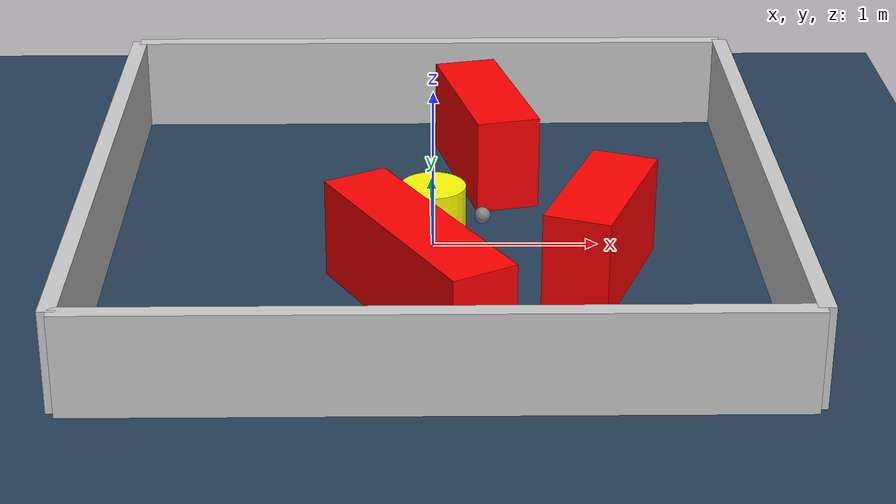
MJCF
<?xml version="1.0" ?>
<mujoco model="generated_environment">
  <option timestep="0.01" integrator="RK4" cone="elliptic"/>
  <default>
    <geom density="1"/>
  </default>
  <asset>
    <texture builtin="gradient" height="3072" rgb1="0.3 0.5 0.7" rgb2="0 0 0" type="skybox" width="512"/>
    <texture builtin="checker" height="300" mark="edge" markrgb="0.8 0.8 0.8" name="groundplane" rgb1="0.2 0.3 0.4" rgb2="0.1 0.2 0.3" type="2d" width="300"/>
    <material name="groundplane" reflectance="0.2" texrepeat="5 5" texture="groundplane" texuniform="true"/>
    <material name="robot" rgba="0.0 1.0 0.0 1"/>
  </asset>
  <worldbody>
    <light dir="0 0 -1" directional="true" pos="0 0 1.5"/>
    <geom condim="4" friction="1.0 0.005 0.001" material="groundplane" name="floor" size="0 0 0.05" type="plane"/>
    <body name="walls">
      <geom name="wall_1" condim="4" pos="-2.0 0.0 0.3" rgba="0.800000011920929 0.800000011920929 0.800000011920929 1.0" size="0.05 2.0 0.3" type="box"/>
      <geom name="wall_2" condim="4" pos="2.0 0.0 0.3" rgba="0.800000011920929 0.800000011920929 0.800000011920929 1.0" size="0.05 2.0 0.3" type="box"/>
      <geom name="wall_3" condim="4" pos="0.0 -2.0 0.3" rgba="0.800000011920929 0.800000011920929 0.800000011920929 1.0" size="2.0 0.05 0.3" type="box"/>
      <geom name="wall_4" condim="4" pos="0.0 2.0 0.3" rgba="0.800000011920929 0.800000011920929 0.800000011920929 1.0" size="2.0 0.05 0.3" type="box"/>
    </body>
    <body name="robot">
      <joint name="joint_x" type="slide" pos="0 0 0" axis="1 0 0"/>
      <joint name="joint_y" type="slide" pos="0 0 0" axis="0 1 0"/>
      <geom name="robot" type="sphere" pos="0.3 0.0 0.2" size="0.05" mass="5." friction="1.0 0.005 0.0001" condim="4" rgba="0.5 0.5 0.5 1.0"/>
      <site name="sensor_ball"/>
    </body>
    <body name="obstacle_movable_1">
      <geom name="obstacle_movable_1" condim="4" pos="0.0 0.0 0.2" euler="0 0 0.0" friction="1.0 0.005 0.001" rgba="1.0 1.0 0.0 1.0" size="0.2 0.2 0.0" type="cylinder" mass="0.1"/>
      <joint type="free"/>
    </body>
    <body name="obstacle_2_static">
      <geom name="obstacle_2_static" condim="4" pos="-0.10267108928844904 -0.9358808644871842 0.3" euler="0 0 299.2724073244016" friction="1.0 0.005 0.001" rgba="1 0 0 1" size="0.7452873780035303 0.2 0.3" type="box"/>
    </body>
    <body name="obstacle_3_static">
      <geom name="obstacle_3_static" condim="4" pos="0.9748918411081131 -0.469367610666519 0.3" euler="0 0 248.7464781517163" friction="1.0 0.005 0.001" rgba="1 0 0 1" size="0.5004862576558213 0.2 0.3" type="box"/>
    </body>
    <body name="obstacle_4_static">
      <geom name="obstacle_4_static" condim="4" pos="0.35541556164293353 1.0520873764343481 0.3" euler="0 0 283.08713608906635" friction="1.0 0.005 0.001" rgba="1 0 0 1" size="0.5487726815911603 0.2 0.3" type="box"/>
    </body>
  </worldbody>
  <actuator>
    <motor name="actuator_x" joint="joint_x" gear="1" ctrlrange="-1 1"/>
    <motor name="actuator_y" joint="joint_y" gear="1" ctrlrange="-1 1"/>
  </actuator>
</mujoco>
